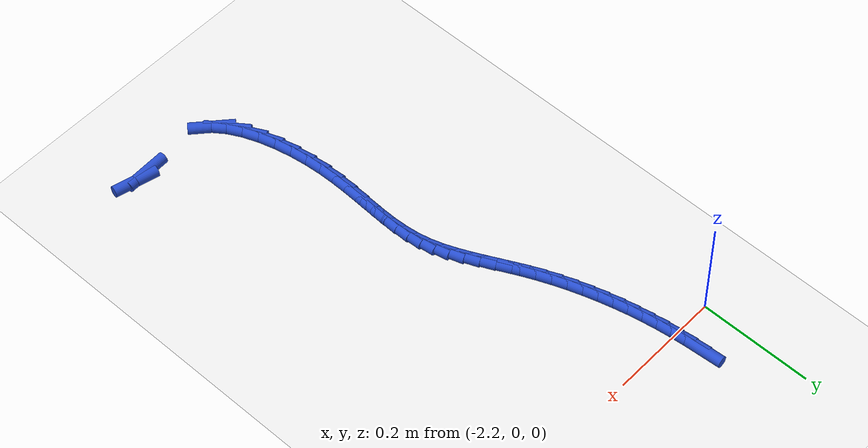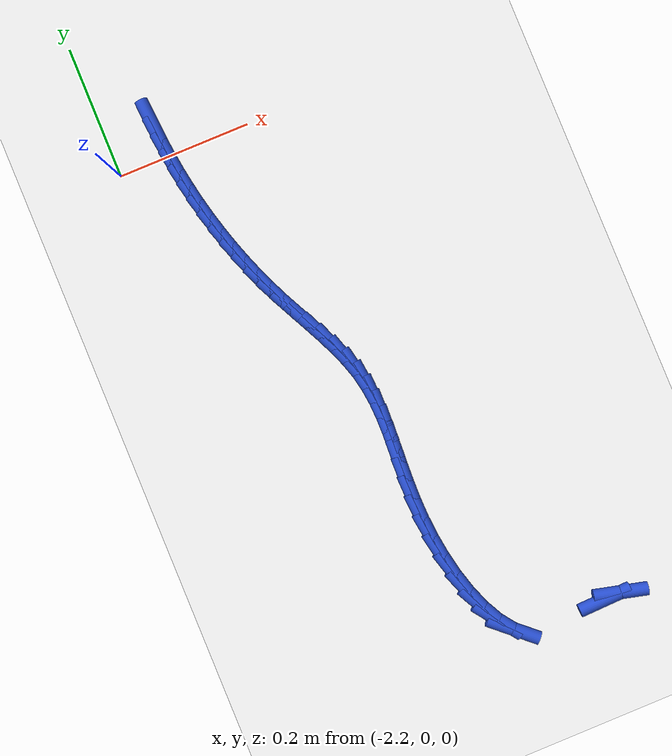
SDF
<sdf version="1.6">
 <world name="default">
  <model name="ground_plane">
   <static>1</static>
   <link name="link">
    <collision name="collision">
     <geometry><plane><normal>0 0 1</normal><size>100 100</size></plane></geometry>
     <surface><friction><ode><mu>100</mu><mu2>50</mu2></ode></friction></surface>
    </collision>
    <visual name="visual">
     <cast_shadows>0</cast_shadows>
     <geometry><plane><normal>0 0 1</normal><size>100 100</size></plane></geometry>
     <material>
      <script><uri>file://media/materials/scripts/gazebo.material</uri><name>Gazebo/WhiteGlow</name></script>
     </material>
    </visual>
   </link>
  </model>
  <model name="line">
   <link name="link_150">
    <pose>-2.12812852860859 0.049335589239655156 0.01 0 1.57 -1.4998362639079448</pose>
    <collision name="collision">
     <geometry><cylinder><radius>0.01</radius><length>0.08</length></cylinder></geometry>
    </collision>
    <visual name="visual">
     <material>
      <script><name>Gazebo/Blue</name><uri>file://media/materials/scripts/gazebo.material</uri></script>
     </material>
     <geometry><cylinder><radius>0.01</radius><length>0.08</length></cylinder></geometry>
    </visual>
   </link>
   <link name="link_151">
    <pose>-2.1262723306966347 0.02322116280200804 0.01 0 1.57 -1.4693057831443235</pose>
    <collision name="collision">
     <geometry><cylinder><radius>0.01</radius><length>0.08</length></cylinder></geometry>
    </collision>
    <visual name="visual">
     <material>
      <script><name>Gazebo/Blue</name><uri>file://media/materials/scripts/gazebo.material</uri></script>
     </material>
     <geometry><cylinder><radius>0.01</radius><length>0.08</length></cylinder></geometry>
    </visual>
   </link>
   <link name="link_152">
    <pose>-2.1236192547752557 -0.00283013595672902 0.01 0 1.57 -1.4385015392262326</pose>
    <collision name="collision">
     <geometry><cylinder><radius>0.01</radius><length>0.08</length></cylinder></geometry>
    </collision>
    <visual name="visual">
     <material>
      <script><name>Gazebo/Blue</name><uri>file://media/materials/scripts/gazebo.material</uri></script>
     </material>
     <geometry><cylinder><radius>0.01</radius><length>0.08</length></cylinder></geometry>
    </visual>
   </link>
   <link name="link_153">
    <pose>-2.1201634809664016 -0.028799332683586636 0.01 0 1.57 -1.4074182975557803</pose>
    <collision name="collision">
     <geometry><cylinder><radius>0.01</radius><length>0.08</length></cylinder></geometry>
    </collision>
    <visual name="visual">
     <material>
      <script><name>Gazebo/Blue</name><uri>file://media/materials/scripts/gazebo.material</uri></script>
     </material>
     <geometry><cylinder><radius>0.01</radius><length>0.08</length></cylinder></geometry>
    </visual>
   </link>
   <link name="link_154">
    <pose>-2.11589918939202 -0.05466745302559287 0.01 0 1.57 -1.376053026657823</pose>
    <collision name="collision">
     <geometry><cylinder><radius>0.01</radius><length>0.08</length></cylinder></geometry>
    </collision>
    <visual name="visual">
     <material>
      <script><name>Gazebo/Blue</name><uri>file://media/materials/scripts/gazebo.material</uri></script>
     </material>
     <geometry><cylinder><radius>0.01</radius><length>0.08</length></cylinder></geometry>
    </visual>
   </link>
   <link name="link_155">
    <pose>-2.110820560174058 -0.08041552262977666 0.01 0 1.57 -1.3444050664085256</pose>
    <collision name="collision">
     <geometry><cylinder><radius>0.01</radius><length>0.08</length></cylinder></geometry>
    </collision>
    <visual name="visual">
     <material>
      <script><name>Gazebo/Blue</name><uri>file://media/materials/scripts/gazebo.material</uri></script>
     </material>
     <geometry><cylinder><radius>0.01</radius><length>0.08</length></cylinder></geometry>
    </visual>
   </link>
   <link name="link_156">
    <pose>-2.1049217734344654 -0.106024567143167 0.01 0 1.57 -1.3124762865581647</pose>
    <collision name="collision">
     <geometry><cylinder><radius>0.01</radius><length>0.08</length></cylinder></geometry>
    </collision>
    <visual name="visual">
     <material>
      <script><name>Gazebo/Blue</name><uri>file://media/materials/scripts/gazebo.material</uri></script>
     </material>
     <geometry><cylinder><radius>0.01</radius><length>0.08</length></cylinder></geometry>
    </visual>
   </link>
   <link name="link_157">
    <pose>-2.0981970092951876 -0.13147561221279275 0.01 0 1.57 -1.2802712312546942</pose>
    <collision name="collision">
     <geometry><cylinder><radius>0.01</radius><length>0.08</length></cylinder></geometry>
    </collision>
    <visual name="visual">
     <material>
      <script><name>Gazebo/Blue</name><uri>file://media/materials/scripts/gazebo.material</uri></script>
     </material>
     <geometry><cylinder><radius>0.01</radius><length>0.08</length></cylinder></geometry>
    </visual>
   </link>
   <link name="link_158">
    <pose>-2.090640447878174 -0.15674968348568297 0.01 0 1.57 -1.247797244909269</pose>
    <collision name="collision">
     <geometry><cylinder><radius>0.01</radius><length>0.08</length></cylinder></geometry>
    </collision>
    <visual name="visual">
     <material>
      <script><name>Gazebo/Blue</name><uri>file://media/materials/scripts/gazebo.material</uri></script>
     </material>
     <geometry><cylinder><radius>0.01</radius><length>0.08</length></cylinder></geometry>
    </visual>
   </link>
   <link name="link_159">
    <pose>-2.082246269305372 -0.1818278066088665 0.01 0 1.57 -1.2150645745072455</pose>
    <collision name="collision">
     <geometry><cylinder><radius>0.01</radius><length>0.08</length></cylinder></geometry>
    </collision>
    <visual name="visual">
     <material>
      <script><name>Gazebo/Blue</name><uri>file://media/materials/scripts/gazebo.material</uri></script>
     </material>
     <geometry><cylinder><radius>0.01</radius><length>0.08</length></cylinder></geometry>
    </visual>
   </link>
   <link name="link_160">
    <pose>-2.0730086536987287 -0.20669100722937223 0.01 0 1.57 -1.1820864433810565</pose>
    <collision name="collision">
     <geometry><cylinder><radius>0.01</radius><length>0.08</length></cylinder></geometry>
    </collision>
    <visual name="visual">
     <material>
      <script><name>Gazebo/Blue</name><uri>file://media/materials/scripts/gazebo.material</uri></script>
     </material>
     <geometry><cylinder><radius>0.01</radius><length>0.08</length></cylinder></geometry>
    </visual>
   </link>
   <link name="link_161">
    <pose>-2.0629217811801928 -0.23132031099422917 0.01 0 1.57 -1.148880577814231</pose>
    <collision name="collision">
     <geometry><cylinder><radius>0.01</radius><length>0.08</length></cylinder></geometry>
    </collision>
    <visual name="visual">
     <material>
      <script><name>Gazebo/Blue</name><uri>file://media/materials/scripts/gazebo.material</uri></script>
     </material>
     <geometry><cylinder><radius>0.01</radius><length>0.08</length></cylinder></geometry>
    </visual>
   </link>
   <link name="link_162">
    <pose>-2.0519798731160246 -0.2556967486403476 0.01 0 1.57 -1.119617927656252</pose>
    <collision name="collision">
     <geometry><cylinder><radius>0.01</radius><length>0.08</length></cylinder></geometry>
    </collision>
    <visual name="visual">
     <material>
      <script><name>Gazebo/Blue</name><uri>file://media/materials/scripts/gazebo.material</uri></script>
     </material>
     <geometry><cylinder><radius>0.01</radius><length>0.08</length></cylinder></geometry>
    </visual>
   </link>
   <link name="link_163">
    <pose>-2.040293984282616 -0.2798157690905836 0.01 0 1.57 -1.1073234621754284</pose>
    <collision name="collision">
     <geometry><cylinder><radius>0.01</radius><length>0.08</length></cylinder></geometry>
    </collision>
    <visual name="visual">
     <material>
      <script><name>Gazebo/Blue</name><uri>file://media/materials/scripts/gazebo.material</uri></script>
     </material>
     <geometry><cylinder><radius>0.01</radius><length>0.08</length></cylinder></geometry>
    </visual>
   </link>
   <link name="link_164">
    <pose>-2.0283476926992847 -0.3037187936431595 0.01 0 1.57 -1.114582584850872</pose>
    <collision name="collision">
     <geometry><cylinder><radius>0.01</radius><length>0.08</length></cylinder></geometry>
    </collision>
    <visual name="visual">
     <material>
      <script><name>Gazebo/Blue</name><uri>file://media/materials/scripts/gazebo.material</uri></script>
     </material>
     <geometry><cylinder><radius>0.01</radius><length>0.08</length></cylinder></geometry>
    </visual>
   </link>
   <link name="link_165">
    <pose>-2.0166986612210454 -0.3274563862630715 0.01 0 1.57 -1.1421881804024092</pose>
    <collision name="collision">
     <geometry><cylinder><radius>0.01</radius><length>0.08</length></cylinder></geometry>
    </collision>
    <visual name="visual">
     <material>
      <script><name>Gazebo/Blue</name><uri>file://media/materials/scripts/gazebo.material</uri></script>
     </material>
     <geometry><cylinder><radius>0.01</radius><length>0.08</length></cylinder></geometry>
    </visual>
   </link>
   <link name="link_166">
    <pose>-2.005904552702915 -0.3510791109153161 0.01 0 1.57 -1.191822133730127</pose>
    <collision name="collision">
     <geometry><cylinder><radius>0.01</radius><length>0.08</length></cylinder></geometry>
    </collision>
    <visual name="visual">
     <material>
      <script><name>Gazebo/Blue</name><uri>file://media/materials/scripts/gazebo.material</uri></script>
     </material>
     <geometry><cylinder><radius>0.01</radius><length>0.08</length></cylinder></geometry>
    </visual>
   </link>
   <link name="link_167">
    <pose>-1.9965230299999082 -0.37463753156488916 0.01 0 1.57 -1.265840313505032</pose>
    <collision name="collision">
     <geometry><cylinder><radius>0.01</radius><length>0.08</length></cylinder></geometry>
    </collision>
    <visual name="visual">
     <material>
      <script><name>Gazebo/Blue</name><uri>file://media/materials/scripts/gazebo.material</uri></script>
     </material>
     <geometry><cylinder><radius>0.01</radius><length>0.08</length></cylinder></geometry>
    </visual>
   </link>
   <link name="link_168">
    <pose>-1.9891117559670421 -0.3981822121767873 0.01 0 1.57 -1.3628273338021508</pose>
    <collision name="collision">
     <geometry><cylinder><radius>0.01</radius><length>0.08</length></cylinder></geometry>
    </collision>
    <visual name="visual">
     <material>
      <script><name>Gazebo/Blue</name><uri>file://media/materials/scripts/gazebo.material</uri></script>
     </material>
     <geometry><cylinder><radius>0.01</radius><length>0.08</length></cylinder></geometry>
    </visual>
   </link>
   <link name="link_169">
    <pose>-1.9841339054589957 -0.42177167525568027 0.01 0 1.57 -1.4557621623011214</pose>
    <collision name="collision">
     <geometry><cylinder><radius>0.01</radius><length>0.08</length></cylinder></geometry>
    </collision>
    <visual name="visual">
     <material>
      <script><name>Gazebo/Blue</name><uri>file://media/materials/scripts/gazebo.material</uri></script>
     </material>
     <geometry><cylinder><radius>0.01</radius><length>0.08</length></cylinder></geometry>
    </visual>
   </link>
   <link name="link_170">
    <pose>-1.9813898917092392 -0.4455202664228127 0.01 0 1.57 -1.5295052409284657</pose>
    <collision name="collision">
     <geometry><cylinder><radius>0.01</radius><length>0.08</length></cylinder></geometry>
    </collision>
    <visual name="visual">
     <material>
      <script><name>Gazebo/Blue</name><uri>file://media/materials/scripts/gazebo.material</uri></script>
     </material>
     <geometry><cylinder><radius>0.01</radius><length>0.08</length></cylinder></geometry>
    </visual>
   </link>
   <link name="link_171">
    <pose>-1.9803964432893375 -0.4695662255042862 0.01 0 1.57 1.5596549738150836</pose>
    <collision name="collision">
     <geometry><cylinder><radius>0.01</radius><length>0.08</length></cylinder></geometry>
    </collision>
    <visual name="visual">
     <material>
      <script><name>Gazebo/Blue</name><uri>file://media/materials/scripts/gazebo.material</uri></script>
     </material>
     <geometry><cylinder><radius>0.01</radius><length>0.08</length></cylinder></geometry>
    </visual>
   </link>
   <link name="link_172">
    <pose>-1.980669213362365 -0.4940478829057611 0.01 0 1.57 1.5287292471510618</pose>
    <collision name="collision">
     <geometry><cylinder><radius>0.01</radius><length>0.08</length></cylinder></geometry>
    </collision>
    <visual name="visual">
     <material>
      <script><name>Gazebo/Blue</name><uri>file://media/materials/scripts/gazebo.material</uri></script>
     </material>
     <geometry><cylinder><radius>0.01</radius><length>0.08</length></cylinder></geometry>
    </visual>
   </link>
   <link name="link_173">
    <pose>-1.981723855091391 -0.519103569032897 0.01 0 1.57 1.5183698628474462</pose>
    <collision name="collision">
     <geometry><cylinder><radius>0.01</radius><length>0.08</length></cylinder></geometry>
    </collision>
    <visual name="visual">
     <material>
      <script><name>Gazebo/Blue</name><uri>file://media/materials/scripts/gazebo.material</uri></script>
     </material>
     <geometry><cylinder><radius>0.01</radius><length>0.08</length></cylinder></geometry>
    </visual>
   </link>
   <link name="link_174">
    <pose>-1.9830760216394847 -0.5448716142913534 0.01 0 1.57 1.5270451534085498</pose>
    <collision name="collision">
     <geometry><cylinder><radius>0.01</radius><length>0.08</length></cylinder></geometry>
    </collision>
    <visual name="visual">
     <material>
      <script><name>Gazebo/Blue</name><uri>file://media/materials/scripts/gazebo.material</uri></script>
     </material>
     <geometry><cylinder><radius>0.01</radius><length>0.08</length></cylinder></geometry>
    </visual>
   </link>
   <link name="link_175">
    <pose>-1.9842413661697194 -0.5714903490867906 0.01 0 1.57 1.5528983517028796</pose>
    <collision name="collision">
     <geometry><cylinder><radius>0.01</radius><length>0.08</length></cylinder></geometry>
    </collision>
    <visual name="visual">
     <material>
      <script><name>Gazebo/Blue</name><uri>file://media/materials/scripts/gazebo.material</uri></script>
     </material>
     <geometry><cylinder><radius>0.01</radius><length>0.08</length></cylinder></geometry>
    </visual>
   </link>
   <link name="link_176">
    <pose>-1.9847355418451638 -0.5990981038248682 0.01 0 1.57 -1.5477853344083747</pose>
    <collision name="collision">
     <geometry><cylinder><radius>0.01</radius><length>0.08</length></cylinder></geometry>
    </collision>
    <visual name="visual">
     <material>
      <script><name>Gazebo/Blue</name><uri>file://media/materials/scripts/gazebo.material</uri></script>
     </material>
     <geometry><cylinder><radius>0.01</radius><length>0.08</length></cylinder></geometry>
    </visual>
   </link>
   <link name="link_177">
    <pose>-1.9840742018288895 -0.6278332089112458 0.01 0 1.57 -1.494263490334751</pose>
    <collision name="collision">
     <geometry><cylinder><radius>0.01</radius><length>0.08</length></cylinder></geometry>
    </collision>
    <visual name="visual">
     <material>
      <script><name>Gazebo/Blue</name><uri>file://media/materials/scripts/gazebo.material</uri></script>
     </material>
     <geometry><cylinder><radius>0.01</radius><length>0.08</length></cylinder></geometry>
    </visual>
   </link>
   <link name="link_178">
    <pose>-1.981773847373511 -0.6578315930980236 0.01 0 1.57 -1.4332505967626756</pose>
    <collision name="collision">
     <geometry><cylinder><radius>0.01</radius><length>0.08</length></cylinder></geometry>
    </collision>
    <visual name="visual">
     <material>
      <script><name>Gazebo/Blue</name><uri>file://media/materials/scripts/gazebo.material</uri></script>
     </material>
     <geometry><cylinder><radius>0.01</radius><length>0.08</length></cylinder></geometry>
    </visual>
   </link>
   <link name="link_179">
    <pose>-1.9774773263023802 -0.6888713919138131 0.01 0 1.57 -1.3682925225626628</pose>
    <collision name="collision">
     <geometry><cylinder><radius>0.01</radius><length>0.08</length></cylinder></geometry>
    </collision>
    <visual name="visual">
     <material>
      <script><name>Gazebo/Blue</name><uri>file://media/materials/scripts/gazebo.material</uri></script>
     </material>
     <geometry><cylinder><radius>0.01</radius><length>0.08</length></cylinder></geometry>
    </visual>
   </link>
   <link name="link_180">
    <pose>-1.9710867973594866 -0.7199964139511258 0.01 0 1.57 -1.29457335389154</pose>
    <collision name="collision">
     <geometry><cylinder><radius>0.01</radius><length>0.08</length></cylinder></geometry>
    </collision>
    <visual name="visual">
     <material>
      <script><name>Gazebo/Blue</name><uri>file://media/materials/scripts/gazebo.material</uri></script>
     </material>
     <geometry><cylinder><radius>0.01</radius><length>0.08</length></cylinder></geometry>
    </visual>
   </link>
   <link name="link_181">
    <pose>-1.9625362528304569 -0.75016032031836 0.01 0 1.57 -1.2052582379006613</pose>
    <collision name="collision">
     <geometry><cylinder><radius>0.01</radius><length>0.08</length></cylinder></geometry>
    </collision>
    <visual name="visual">
     <material>
      <script><name>Gazebo/Blue</name><uri>file://media/materials/scripts/gazebo.material</uri></script>
     </material>
     <geometry><cylinder><radius>0.01</radius><length>0.08</length></cylinder></geometry>
    </visual>
   </link>
   <link name="link_182">
    <pose>-1.9517596850009187 -0.7783167721239155 0.01 0 1.57 -1.0908000035533723</pose>
    <collision name="collision">
     <geometry><cylinder><radius>0.01</radius><length>0.08</length></cylinder></geometry>
    </collision>
    <visual name="visual">
     <material>
      <script><name>Gazebo/Blue</name><uri>file://media/materials/scripts/gazebo.material</uri></script>
     </material>
     <geometry><cylinder><radius>0.01</radius><length>0.08</length></cylinder></geometry>
    </visual>
   </link>
   <link name="link_183">
    <pose>-1.938691086156501 -0.8034194304761914 0.01 0 1.57 -0.937280514799468</pose>
    <collision name="collision">
     <geometry><cylinder><radius>0.01</radius><length>0.08</length></cylinder></geometry>
    </collision>
    <visual name="visual">
     <material>
      <script><name>Gazebo/Blue</name><uri>file://media/materials/scripts/gazebo.material</uri></script>
     </material>
     <geometry><cylinder><radius>0.01</radius><length>0.08</length></cylinder></geometry>
    </visual>
   </link>
   <link name="link_184">
    <pose>-1.9232644485828294 -0.8244219564835854 0.01 0 1.57 -0.726291114308314</pose>
    <collision name="collision">
     <geometry><cylinder><radius>0.01</radius><length>0.08</length></cylinder></geometry>
    </collision>
    <visual name="visual">
     <material>
      <script><name>Gazebo/Blue</name><uri>file://media/materials/scripts/gazebo.material</uri></script>
     </material>
     <geometry><cylinder><radius>0.01</radius><length>0.08</length></cylinder></geometry>
    </visual>
   </link>
   <link name="link_190">
    <pose>-1.7849954547577056 -0.8357145056328136 0.01 0 1.57 0.034961178033191</pose>
    <collision name="collision">
     <geometry><cylinder><radius>0.01</radius><length>0.08</length></cylinder></geometry>
    </collision>
    <visual name="visual">
     <material>
      <script><name>Gazebo/Blue</name><uri>file://media/materials/scripts/gazebo.material</uri></script>
     </material>
     <geometry><cylinder><radius>0.01</radius><length>0.08</length></cylinder></geometry>
    </visual>
   </link>
   <link name="link_191">
    <pose>-1.760258303117789 -0.8348493131379301 0.01 0 1.57 -0.24213766760842834</pose>
    <collision name="collision">
     <geometry><cylinder><radius>0.01</radius><length>0.08</length></cylinder></geometry>
    </collision>
    <visual name="visual">
     <material>
      <script><name>Gazebo/Blue</name><uri>file://media/materials/scripts/gazebo.material</uri></script>
     </material>
     <geometry><cylinder><radius>0.01</radius><length>0.08</length></cylinder></geometry>
    </visual>
   </link>
  </model>
 </world>
</sdf>
